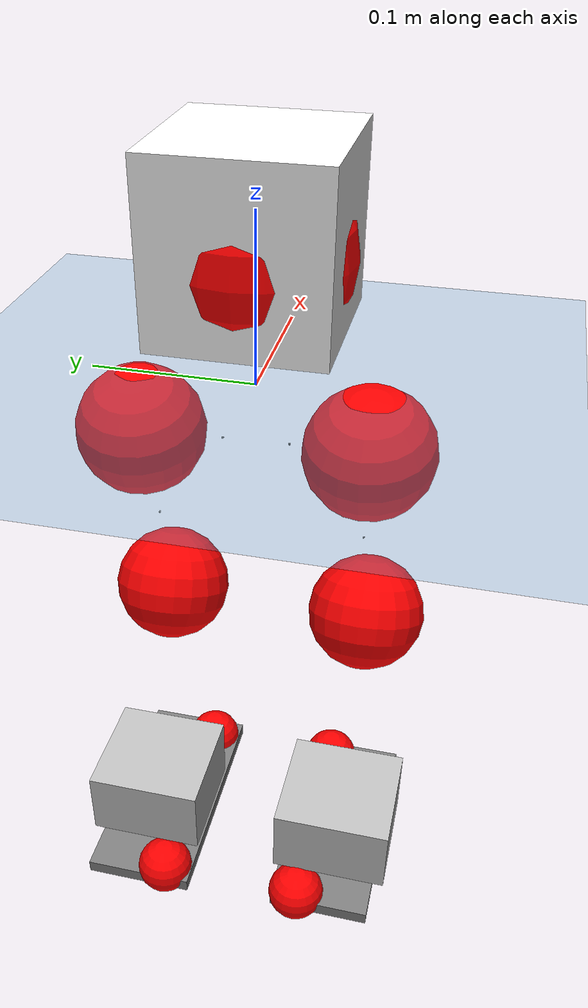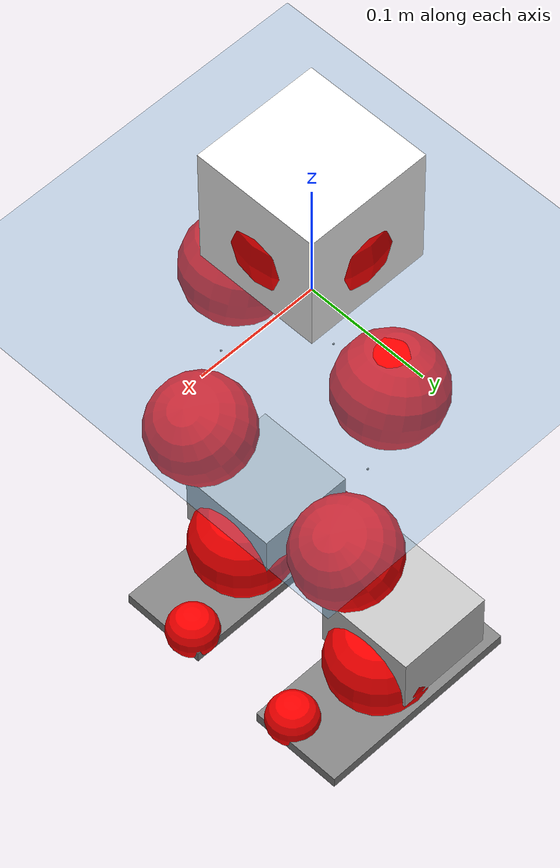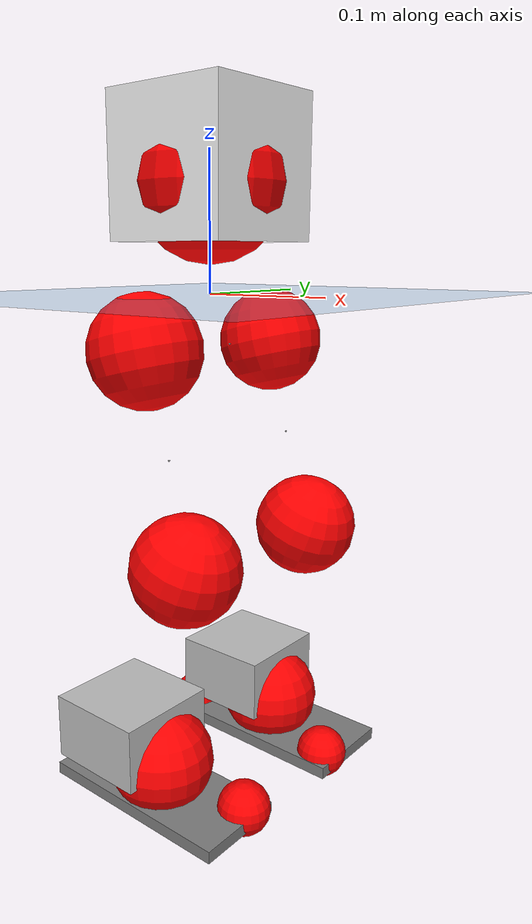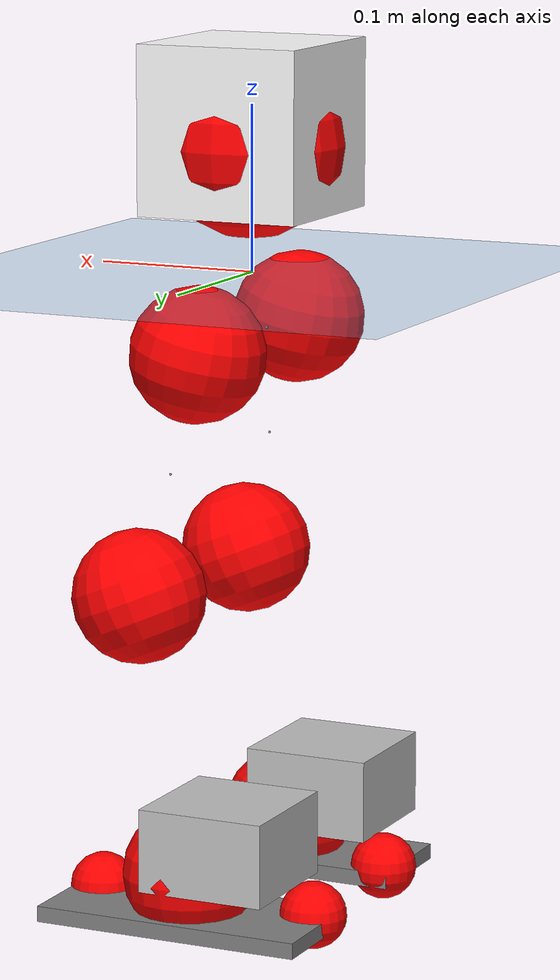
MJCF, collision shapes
<mujoco model="pi_12dof_release_v1">
  <compiler angle="radian" assetdir="assets" balanceinertia="true" inertiafromgeom="false"/>

  <option timestep="0.005" density="1.2" viscosity="2e-05"/>

  <size nkey="1"/>

  <visual>
    <quality shadowsize="8192"/>
    <map shadowclip="0.5"/>
  </visual>

  <default>
    <default class="/">
      <joint armature="0.01" damping="0.01" frictionloss="0.01"/>
      <geom contype="0" conaffinity="0" group="1" solref="-1000 -80"/>
      <site size="0.01 0.005 0.005" group="5"/>
      <general forcelimited="true" biastype="affine" gainprm="20" biasprm="0 -20 -0.5"/>
      <default class="foot">
        <geom size="0.0845 0.036 0.005" type="box" condim="6" group="4" priority="1" friction="0.9 0.2 0.2" solimp="0.015 1 0.005"/>
      </default>
      <default class="reward_collision_sphere">
        <geom group="5" rgba="1 0 0 1"/>
      </default>
    </default>
  </default>

  <asset>
    <texture type="skybox" colorspace="auto" name="//unnamed_texture_0" builtin="gradient" rgb1="0.95 0.95 0.95" rgb2="0.95 0.95 0.95" width="100" height="600"/>
    <texture type="2d" colorspace="auto" name="texplane" builtin="checker" rgb1="0.345 0.575 0.748" rgb2="0.345 0.575 0.748" markrgb="1 1 1" width="512" height="512"/>
    <material name="MatPlane" class="/" texture="texplane" texuniform="true" texrepeat="2 2" specular="0.9"/>
    <mesh name="baselink_1" class="/" file="baselink_1.STL"/>
    <mesh name="r_hip_pitch_link" class="/" file="r_hip_pitch_link.STL"/>
    <mesh name="r_hip_roll_link" class="/" file="r_hip_roll_link.STL"/>
    <mesh name="r_thigh_link" class="/" file="r_thigh_link.STL"/>
    <mesh name="r_calf_link" class="/" file="r_calf_link.STL"/>
    <mesh name="r_ankle_pitch_link" class="/" file="r_ankle_pitch_link.STL"/>
    <mesh name="r_ankle_roll_link" class="/" file="r_ankle_roll_link.STL"/>
    <mesh name="l_hip_pitch_link" class="/" file="l_hip_pitch_link.STL"/>
    <mesh name="l_hip_roll_link" class="/" file="l_hip_roll_link.STL"/>
    <mesh name="l_thigh_link" class="/" file="l_thigh_link.STL"/>
    <mesh name="l_calf_link" class="/" file="l_calf_link.STL"/>
    <mesh name="l_ankle_pitch_link" class="/" file="l_ankle_pitch_link.STL"/>
    <mesh name="l_ankle_roll_link" class="/" file="l_ankle_roll_link.STL"/>
  </asset>

  <worldbody>
    <geom name="floor" class="/" size="100 100 0.125" type="plane" group="0" material="MatPlane"/>
    <light name="toplight_shadow" class="/" pos="0 0 5" dir="0.0990148 0.0990148 -0.990148" type="directional" ambient="0.04 0.04 0.04" diffuse="0.55 0.55 0.55" specular="0.12 0.12 0.12"/>
    <light name="toplight_fill" class="/" pos="0 0 5" dir="0.0990148 0.0990148 -0.990148" type="directional" castshadow="false" ambient="0.04 0.04 0.04" diffuse="0.3 0.3 0.3" specular="0.08 0.08 0.08"/>
    <body name="trunk" pos="0.00038736 -3.05718e-05 -0.000890249" quat="1 -2.70413e-05 0.000369992 -0.000328886">
      <inertial pos="0.000224655 -0.00206776 0.0452323" quat="0.695624 0.00966916 0.00942884 0.718279" mass="2.29806" diaginertia="0.0119574 0.00533699 0.00669997"/>
      <joint name="//unnamed_joint_0" type="free"/>
      <geom name="//unnamed_geom_1" class="/" type="mesh" density="0" rgba="1 1 1 1" mesh="baselink_1"/>
      <geom name="//unnamed_geom_2" class="/" size="0.0506383 0.0506383 0.0506383" pos="0 0 0.0879117" type="box" rgba="1 1 1 1"/>
      <geom name="//unnamed_geom_3" class="reward_collision_sphere" size="0.0557022" pos="0 0 0.0769228"/>
      <site name="imu" class="/" pos="0.007734 0.000253346 -0.00763865" size="0.0101277"/>
      <camera name="track" class="/" pos="0 -1.79893 0" quat="0.707107 0.707107 0 0" mode="trackcom"/>
      <camera name="ego_camera" class="/" pos="0.0779954 0 0.197801" quat="-0.5 -0.5 0.5 0.5"/>
      <body name="r_hip_pitch_link" pos="-0.000349857 -0.0203325 -0.035403" quat="0.992205 -4.43047e-05 -0.124617 -3.81649e-05">
        <inertial pos="0.00100964 -0.0510041 5.63074e-05" quat="-0.0189537 0.705854 -0.0285126 0.70753" mass="0.370107" diaginertia="0.000128244 5.57236e-05 0.000129331"/>
        <joint name="r_hip_pitch_joint" class="/" pos="0 0 0" axis="-0.00348424 -0.999988 0.00341384" range="-1.73725 1.21397" armature="0.00956676" damping="0.0130489" frictionloss="0.0106356"/>
        <geom name="//unnamed_geom_4" class="/" type="mesh" density="0" rgba="0.75294 0.75294 0.75294 1" mesh="r_hip_pitch_link"/>
        <geom name="//unnamed_geom_5" class="/" size="0.000506383 0.000506383 0.000506383" type="box" rgba="0.75294 0.75294 0.75294 1"/>
        <body name="r_hip_roll_link" pos="0.000919052 -0.0481896 -0.000376421" quat="1 -3.04798e-05 -0.000403079 -0.000439627">
          <inertial pos="-0.00059775 -5.30372e-05 -0.0682019" quat="0.707159 -0.0789975 -0.0838461 0.697607" mass="0.401664" diaginertia="0.000404751 0.000158954 0.00020304"/>
          <joint name="r_hip_roll_joint" class="/" pos="0 0 0" axis="-1 2.07774e-06 -6.18169e-07" stiffness="0.000766857" range="-0.109249 0.495074" armature="0.0103461" damping="0" frictionloss="0.0109875"/>
          <geom name="//unnamed_geom_6" class="/" type="mesh" density="0" rgba="0.75294 0.75294 0.75294 1" mesh="r_hip_roll_link"/>
          <geom name="//unnamed_geom_7" class="/" size="0.000506383 0.000506383 0.000506383" type="box" rgba="0.75294 0.75294 0.75294 1"/>
          <geom name="//unnamed_geom_8" class="reward_collision_sphere" size="0.0405107"/>
          <body name="r_thigh_link" pos="0.000160598 0.00203807 -0.0759956" quat="1 -0.000110126 -8.95892e-05 -0.000199858">
            <inertial pos="-7.6625e-05 0.000131075 -0.0512413" quat="0.738125 0.674664 -0.000572023 -0.000256953" mass="0.116928" diaginertia="0.000149875 5.58518e-05 9.25036e-05"/>
            <joint name="r_thigh_joint" class="/" pos="0 0 0" axis="-4.04815e-05 -0.000407214 -1" range="-0.303464 0.601025" armature="0.0110213" damping="0.00936717" frictionloss="0.00967444"/>
            <geom name="//unnamed_geom_9" class="/" type="mesh" density="0" rgba="0.75294 0.75294 0.75294 1" mesh="r_thigh_link"/>
            <geom name="//unnamed_geom_10" class="/" size="0.000506383 0.000506383 0.000506383" type="box" rgba="0.75294 0.75294 0.75294 1"/>
            <body name="r_calf_link" pos="-0.00146412 -0.0036001 -0.0771359" quat="0.94766 -1.81063e-05 0.31928 5.73826e-05">
              <inertial pos="-0.000162625 -0.00309445 -0.076524" quat="0.99995 -0.0049371 0.00866016 0.000754872" mass="0.845949" diaginertia="0.00427168 0.00210821 0.000279949"/>
              <joint name="r_calf_joint" class="/" pos="0 0 0" axis="0.000873625 -0.999997 0.00230976" stiffness="0.00122706" range="-1.65204 0.627869" armature="0.0106506" damping="0.0123187" frictionloss="0.01029"/>
              <geom name="//unnamed_geom_11" class="/" type="mesh" density="0" rgba="0.75294 0.75294 0.75294 1" mesh="r_calf_link"/>
              <geom name="//unnamed_geom_12" class="/" size="0.000506383 0.000506383 0.000506383" type="box" rgba="0.75294 0.75294 0.75294 1"/>
              <geom name="//unnamed_geom_13" class="reward_collision_sphere" size="0.0405107"/>
              <body name="r_ankle_pitch_link" pos="0.000177261 0.0013421 -0.15482" quat="0.98011 -0.000428007 -0.198453 -0.000161702">
                <inertial pos="0.00644922 0.0035391 0.0004412" quat="0.00418724 0.70794 -0.00412677 0.706248" mass="0.183461" diaginertia="0.0003752 0.000128934 0.000195288"/>
                <joint name="r_ankle_pitch_joint" class="/" pos="0 0 0" axis="0.00135473 -0.999996 -0.00227599" range="-1.27508 0.496617" armature="0.00982496" damping="0.00245026" frictionloss="0.00988775"/>
                <geom name="//unnamed_geom_14" class="/" type="mesh" density="0" rgba="0.75294 0.75294 0.75294 1" mesh="r_ankle_pitch_link"/>
                <geom name="//unnamed_geom_15" class="/" size="0.0394979 0.0405107 0.0253192" type="box" rgba="0.75294 0.75294 0.75294 1"/>
                <body name="r_ankle_roll_link" pos="0.079708 0.00382136 -0.000129115" quat="1 -5.65964e-06 0.000105011 -0.000281488">
                  <inertial pos="-0.0254027 0.000172583 -0.0162029" quat="0.55878 0.429881 0.427755 0.565679" mass="0.537914" diaginertia="0.00136758 0.000618405 0.000457987"/>
                  <joint name="r_ankle_roll_joint" class="/" pos="0 0 0" axis="-0.999997 -0.000956462 -0.00245213" range="-0.155989 0.142995" armature="0.010988" damping="0.00615879" frictionloss="0.0099082"/>
                  <geom name="//unnamed_geom_16" class="/" type="mesh" density="0" rgba="0.75294 0.75294 0.75294 1" mesh="r_ankle_roll_link"/>
                  <geom name="//unnamed_geom_17" class="/" type="mesh" rgba="0.75294 0.75294 0.75294 1" mesh="r_ankle_roll_link"/>
                  <geom name="right_foot" class="foot" size="0.0807359 0.0356286 0.00478692" pos="-0.0530368 0 -0.0483515"/>
                  <geom name="//unnamed_geom_19" class="reward_collision_sphere" size="0.0405107" pos="-0.0519969 0 -0.0219779"/>
                  <geom name="//unnamed_geom_20" class="reward_collision_sphere" size="0.0202553" pos="0.0155991 0.0179893 -0.0439559"/>
                  <geom name="//unnamed_geom_21" class="reward_collision_sphere" size="0.0202553" pos="-0.124793 0.0179893 -0.0439559"/>
                  <site name="right_foot" class="foot" pos="-0.0530368 0 -0.0483515" size="0.0101277"/>
                </body>
              </body>
            </body>
          </body>
        </body>
      </body>
      <body name="l_hip_pitch_link" pos="0.000962587 0.0210495 -0.037308" quat="0.992199 -4.97652e-06 -0.124665 -2.78919e-05">
        <inertial pos="0.000746237 0.0481171 -0.00200738" quat="-0.0385622 0.703615 0.0288786 0.708946" mass="0.413795" diaginertia="0.000163729 6.32398e-05 0.000166427"/>
        <joint name="l_hip_pitch_joint" class="/" pos="0 0 0" axis="0.00287006 0.999996 -0.000115862" range="-1.24411 1.75548" armature="0.0100349" damping="0.00861114" frictionloss="0.0102358"/>
        <geom name="//unnamed_geom_22" class="/" type="mesh" density="0" rgba="0.75294 0.75294 0.75294 1" mesh="l_hip_pitch_link"/>
        <geom name="//unnamed_geom_23" class="/" size="0.000506383 0.000506383 0.000506383" type="box" rgba="0.75294 0.75294 0.75294 1"/>
        <body name="l_hip_roll_link" pos="-0.00074113 0.0515251 -0.000402852" quat="1 -0.000284721 0.000198496 -0.000248616">
          <inertial pos="-0.00354149 -0.000946558 -0.0689502" quat="0.699215 -0.0751909 -0.0781069 0.706642" mass="0.408688" diaginertia="0.000395273 0.000163397 0.000203511"/>
          <joint name="l_hip_roll_joint" class="/" pos="0 0 0" axis="-0.999994 -0.00325494 0.000647885" range="-0.517809 0.121423" armature="0.0103105" damping="0.0076581" frictionloss="0.0104783"/>
          <geom name="//unnamed_geom_24" class="/" type="mesh" density="0" rgba="0.75294 0.75294 0.75294 1" mesh="l_hip_roll_link"/>
          <geom name="//unnamed_geom_25" class="/" size="0.000506383 0.000506383 0.000506383" type="box" rgba="0.75294 0.75294 0.75294 1"/>
          <geom name="//unnamed_geom_26" class="reward_collision_sphere" size="0.0405107"/>
          <body name="l_thigh_link" pos="0.000108946 -0.00135188 -0.0751306" quat="1 -0.000198851 -5.2871e-05 4.33918e-05">
            <inertial pos="-0.000542531 -0.000560199 -0.0512118" quat="0.676143 0.736768 -0.000514869 0.00179571" mass="0.120344" diaginertia="0.000156423 5.79877e-05 9.44584e-05"/>
            <joint name="l_thigh_joint" class="/" pos="0 0 0" axis="5.62766e-05 0.00132423 -0.999999" range="-0.634833 0.307512" armature="0.0097105" damping="0.00294188" frictionloss="0.0100357"/>
            <geom name="//unnamed_geom_27" class="/" type="mesh" density="0" rgba="0.75294 0.75294 0.75294 1" mesh="l_thigh_link"/>
            <geom name="//unnamed_geom_28" class="/" size="0.000506383 0.000506383 0.000506383" type="box" rgba="0.75294 0.75294 0.75294 1"/>
            <body name="l_calf_link" pos="0.00145638 0.000943053 -0.0779176" quat="0.947604 0.000322871 0.319448 0.000107545">
              <inertial pos="0.00105248 0.00200572 -0.0788446" quat="0.999962 0.00117093 -0.00840955 -0.00216054" mass="0.831782" diaginertia="0.00416725 0.00200349 0.00027306"/>
              <joint name="l_calf_joint" class="/" pos="0 0 0" axis="-0.000201516 0.999997 -0.00241815" range="-0.653023 1.63367" armature="0.0103367" damping="0.00133522" frictionloss="0.00964756"/>
              <geom name="//unnamed_geom_29" class="/" type="mesh" density="0" rgba="0.75294 0.75294 0.75294 1" mesh="l_calf_link"/>
              <geom name="//unnamed_geom_30" class="/" size="0.000506383 0.000506383 0.000506383" type="box" rgba="0.75294 0.75294 0.75294 1"/>
              <geom name="//unnamed_geom_31" class="reward_collision_sphere" size="0.0405107"/>
              <body name="l_ankle_pitch_link" pos="0.00233994 -0.000507585 -0.155422" quat="0.980085 1.98044e-05 -0.198577 0.000394747">
                <inertial pos="0.004749 -0.00153317 0.000127166" quat="-0.00201778 0.706874 0.00234079 0.707333" mass="0.183043" diaginertia="0.000374586 0.00013065 0.000191705"/>
                <joint name="l_ankle_pitch_joint" class="/" pos="0 0 0" axis="0.00175516 0.999998 0.000117285" range="-0.489605 1.31024" armature="0.0102685" damping="0.00929781" frictionloss="0.00962029"/>
                <geom name="//unnamed_geom_32" class="/" type="mesh" density="0" rgba="0.75294 0.75294 0.75294 1" mesh="l_ankle_pitch_link"/>
                <geom name="//unnamed_geom_33" class="/" size="0.0394979 0.0405107 0.0253192" type="box" rgba="0.75294 0.75294 0.75294 1"/>
                <body name="l_ankle_roll_link" pos="0.0772651 0.00102357 9.56312e-05" quat="1 -0.00066067 0.000422163 -0.000120929">
                  <inertial pos="-0.0250638 0.000456955 -0.0159402" quat="0.55835 0.431104 0.434322 0.560143" mass="0.546242" diaginertia="0.00139811 0.000607333 0.000458822"/>
                  <joint name="l_ankle_roll_joint" class="/" pos="0 0 0" axis="-0.999999 0.00143514 0.00019048" range="-0.134545 0.15537" armature="0.010457" damping="0.0169347" frictionloss="0.00962677"/>
                  <geom name="//unnamed_geom_34" class="/" type="mesh" density="0" rgba="0.75294 0.75294 0.75294 1" mesh="l_ankle_roll_link"/>
                  <geom name="//unnamed_geom_35" class="/" type="mesh" rgba="0.75294 0.75294 0.75294 1" mesh="l_ankle_roll_link"/>
                  <geom name="left_foot" class="foot" size="0.0841719 0.0385516 0.00484469" pos="-0.0530368 0 -0.0483515"/>
                  <geom name="//unnamed_geom_37" class="reward_collision_sphere" size="0.0405107" pos="-0.0519969 0 -0.0219779"/>
                  <geom name="//unnamed_geom_38" class="reward_collision_sphere" size="0.0202553" pos="0.0155991 -0.0179893 -0.0439559"/>
                  <geom name="//unnamed_geom_39" class="reward_collision_sphere" size="0.0202553" pos="-0.124793 -0.0179893 -0.0439559"/>
                  <site name="left_foot" class="foot" pos="-0.0530368 0 -0.0483515" size="0.0101277"/>
                </body>
              </body>
            </body>
          </body>
        </body>
      </body>
    </body>
  </worldbody>

  <contact>
    <pair class="/" geom1="floor" geom2="right_foot" name="//unnamed_contact_1"/>
    <pair class="/" geom1="floor" geom2="left_foot" name="//unnamed_contact_0"/>
  </contact>

  <actuator>
    <general name="r_hip_pitch_joint" class="/" joint="r_hip_pitch_joint" forcerange="-21.7785 21.7785" gainprm="19.2241" biasprm="0 -19.2241 -0.511313"/>
    <general name="r_hip_roll_joint" class="/" joint="r_hip_roll_joint" forcerange="-21.2626 21.2626" gainprm="19.2241" biasprm="0 -19.2241 -0.511313"/>
    <general name="r_thigh_joint" class="/" joint="r_thigh_joint" forcerange="-21.584 21.584" gainprm="19.2241" biasprm="0 -19.2241 -0.511313"/>
    <general name="r_calf_joint" class="/" joint="r_calf_joint" forcerange="-22.3881 22.3881" gainprm="19.2241" biasprm="0 -19.2241 -0.511313"/>
    <general name="r_ankle_pitch_joint" class="/" joint="r_ankle_pitch_joint" forcerange="-21.5442 21.5442" gainprm="19.2241" biasprm="0 -19.2241 -0.511313"/>
    <general name="r_ankle_roll_joint" class="/" joint="r_ankle_roll_joint" forcerange="-20.817 20.817" gainprm="19.2241" biasprm="0 -19.2241 -0.511313"/>
    <general name="l_hip_pitch_joint" class="/" joint="l_hip_pitch_joint" forcerange="-20.9939 20.9939" gainprm="19.2241" biasprm="0 -19.2241 -0.511313"/>
    <general name="l_hip_roll_joint" class="/" joint="l_hip_roll_joint" forcerange="-19.9071 19.9071" gainprm="19.2241" biasprm="0 -19.2241 -0.511313"/>
    <general name="l_thigh_joint" class="/" joint="l_thigh_joint" forcerange="-21.9588 21.9588" gainprm="19.2241" biasprm="0 -19.2241 -0.511313"/>
    <general name="l_calf_joint" class="/" joint="l_calf_joint" forcerange="-20.9944 20.9944" gainprm="19.2241" biasprm="0 -19.2241 -0.511313"/>
    <general name="l_ankle_pitch_joint" class="/" joint="l_ankle_pitch_joint" forcerange="-21.2435 21.2435" gainprm="19.2241" biasprm="0 -19.2241 -0.511313"/>
    <general name="l_ankle_roll_joint" class="/" joint="l_ankle_roll_joint" forcerange="-21.2448 21.2448" gainprm="19.2241" biasprm="0 -19.2241 -0.511313"/>
  </actuator>

  <sensor>
    <gyro site="imu" name="imu_angular_velocity"/>
    <velocimeter site="imu" name="imu_linear_velocity"/>
    <framelinvel objtype="site" objname="left_foot" name="left_foot_global_linear_velocity"/>
    <framelinvel objtype="site" objname="right_foot" name="right_foot_global_linear_velocity"/>
  </sensor>

  <keyframe>
    <key name="home" qpos="0 0 0.291 1 0 0 0 0.4 0 0 -0.8 0.4 0 -0.4 0 0 0.8 -0.4 0"/>
  </keyframe>
</mujoco>
